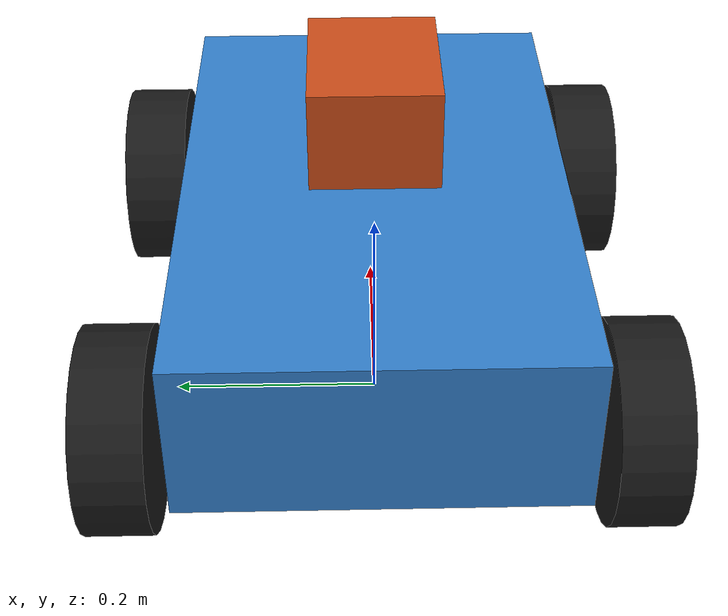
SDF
<?xml version="1.0"?>
<sdf version="1.6">
  <model name="erc_rover">

    <pose>0 0 0.18 0 0 0</pose>

    <!-- ============================
         CHASSIS
    ============================ -->
    <link name="base_link">
      <inertial>
        <mass>8.0</mass>
        <inertia>
          <ixx>0.2</ixx><ixy>0</ixy><ixz>0</ixz>
          <iyy>0.3</iyy><iyz>0</iyz>
          <izz>0.4</izz>
        </inertia>
      </inertial>

      <!-- Chassis collision -->
      <collision name="chassis_collision">
        <geometry><box><size>0.55 0.35 0.15</size></box></geometry>
        <surface>
          <friction><ode><mu>0.5</mu><mu2>0.5</mu2></ode></friction>
        </surface>
      </collision>

      <!-- Chassis visual -->
      <visual name="chassis_visual">
        <geometry><box><size>0.55 0.35 0.15</size></box></geometry>
        <material>
          <ambient>0.2 0.5 0.8 1</ambient>
          <diffuse>0.2 0.5 0.8 1</diffuse>
        </material>
      </visual>

      <!-- Top sensor box -->
      <visual name="sensor_box">
        <pose>0.05 0 0.12 0 0 0</pose>
        <geometry><box><size>0.15 0.12 0.10</size></box></geometry>
        <material>
          <ambient>0.8 0.3 0.1 1</ambient>
          <diffuse>0.8 0.3 0.1 1</diffuse>
        </material>
      </visual>

    </link>

    <!-- Dedicated Front Bumper Link with Contact Sensor -->
    <link name="front_bumper">
      <pose>0.28 0 -0.04 0 0 0</pose>
      <inertial>
        <mass>0.1</mass>
        <inertia>
          <ixx>0.001</ixx><ixy>0</ixy><ixz>0</ixz>
          <iyy>0.001</iyy><iyz>0</iyz>
          <izz>0.001</izz>
        </inertia>
      </inertial>
      <collision name="bumper_collision">
        <geometry><box><size>0.02 0.35 0.15</size></box></geometry>
      </collision>
      <visual name="bumper_visual">
        <geometry><box><size>0.02 0.35 0.15</size></box></geometry>
        <material>
          <ambient>0.8 0.1 0.1 1</ambient>
          <diffuse>0.8 0.1 0.1 1</diffuse>
        </material>
      </visual>

      <sensor name="bumper_sensor" type="contact">
        <contact>
          <collision>bumper_collision</collision>
        </contact>
        <plugin name="gazebo_ros_bumper" filename="libgazebo_ros_bumper.so">
          <ros>
            <namespace>/</namespace>
            <remapping>bumper_states:=bumper_states</remapping>
          </ros>
          <frame_name>front_bumper</frame_name>
        </plugin>
        <always_on>true</always_on>
        <update_rate>100</update_rate>
      </sensor>
    </link>

    <joint name="joint_bumper" type="fixed">
      <parent>base_link</parent>
      <child>front_bumper</child>
    </joint>

    <!-- ============================
         WHEELS (4x)
    ============================ -->

    <!-- Front Left Wheel -->
    <link name="wheel_fl">
      <pose>0.20 0.22 -0.05 -1.5707 0 0</pose>
      <inertial>
        <mass>0.5</mass>
        <inertia><ixx>0.003</ixx><ixy>0</ixy><ixz>0</ixz><iyy>0.003</iyy><iyz>0</iyz><izz>0.005</izz></inertia>
      </inertial>
      <collision name="collision">
        <geometry><cylinder><radius>0.09</radius><length>0.06</length></cylinder></geometry>
        <surface><friction><ode><mu>1.5</mu><mu2>1.5</mu2></ode></friction></surface>
      </collision>
      <visual name="visual">
        <geometry><cylinder><radius>0.09</radius><length>0.06</length></cylinder></geometry>
        <material><ambient>0.1 0.1 0.1 1</ambient></material>
      </visual>
    </link>
    <joint name="joint_fl" type="revolute">
      <parent>base_link</parent><child>wheel_fl</child>
      <axis><xyz>0 0 1</xyz><dynamics><friction>0.1</friction></dynamics></axis>
    </joint>

    <!-- Front Right Wheel -->
    <link name="wheel_fr">
      <pose>0.20 -0.22 -0.05 -1.5707 0 0</pose>
      <inertial>
        <mass>0.5</mass>
        <inertia><ixx>0.003</ixx><ixy>0</ixy><ixz>0</ixz><iyy>0.003</iyy><iyz>0</iyz><izz>0.005</izz></inertia>
      </inertial>
      <collision name="collision">
        <geometry><cylinder><radius>0.09</radius><length>0.06</length></cylinder></geometry>
        <surface><friction><ode><mu>1.5</mu><mu2>1.5</mu2></ode></friction></surface>
      </collision>
      <visual name="visual">
        <geometry><cylinder><radius>0.09</radius><length>0.06</length></cylinder></geometry>
        <material><ambient>0.1 0.1 0.1 1</ambient></material>
      </visual>
    </link>
    <joint name="joint_fr" type="revolute">
      <parent>base_link</parent><child>wheel_fr</child>
      <axis><xyz>0 0 1</xyz><dynamics><friction>0.1</friction></dynamics></axis>
    </joint>

    <!-- Rear Left Wheel -->
    <link name="wheel_rl">
      <pose>-0.20 0.22 -0.05 -1.5707 0 0</pose>
      <inertial>
        <mass>0.5</mass>
        <inertia><ixx>0.003</ixx><ixy>0</ixy><ixz>0</ixz><iyy>0.003</iyy><iyz>0</iyz><izz>0.005</izz></inertia>
      </inertial>
      <collision name="collision">
        <geometry><cylinder><radius>0.09</radius><length>0.06</length></cylinder></geometry>
        <surface><friction><ode><mu>1.5</mu><mu2>1.5</mu2></ode></friction></surface>
      </collision>
      <visual name="visual">
        <geometry><cylinder><radius>0.09</radius><length>0.06</length></cylinder></geometry>
        <material><ambient>0.1 0.1 0.1 1</ambient></material>
      </visual>
    </link>
    <joint name="joint_rl" type="revolute">
      <parent>base_link</parent><child>wheel_rl</child>
      <axis><xyz>0 0 1</xyz><dynamics><friction>0.1</friction></dynamics></axis>
    </joint>

    <!-- Rear Right Wheel -->
    <link name="wheel_rr">
      <pose>-0.20 -0.22 -0.05 -1.5707 0 0</pose>
      <inertial>
        <mass>0.5</mass>
        <inertia><ixx>0.003</ixx><ixy>0</ixy><ixz>0</ixz><iyy>0.003</iyy><iyz>0</iyz><izz>0.005</izz></inertia>
      </inertial>
      <collision name="collision">
        <geometry><cylinder><radius>0.09</radius><length>0.06</length></cylinder></geometry>
        <surface><friction><ode><mu>1.5</mu><mu2>1.5</mu2></ode></friction></surface>
      </collision>
      <visual name="visual">
        <geometry><cylinder><radius>0.09</radius><length>0.06</length></cylinder></geometry>
        <material><ambient>0.1 0.1 0.1 1</ambient></material>
      </visual>
    </link>
    <joint name="joint_rr" type="revolute">
      <parent>base_link</parent><child>wheel_rr</child>
      <axis><xyz>0 0 1</xyz><dynamics><friction>0.1</friction></dynamics></axis>
    </joint>

    <!-- ============================
         DIFFERENTIAL DRIVE PLUGIN
    ============================ -->
    <plugin name="differential_drive" filename="libgazebo_ros_diff_drive.so">
      <ros>
        <namespace>/</namespace>
        <remapping>cmd_vel:=cmd_vel</remapping>
        <remapping>odom:=odom</remapping>
      </ros>

      <num_wheel_pairs>2</num_wheel_pairs>

      <!-- Wheels -->
      <left_joint>joint_fl</left_joint>
      <left_joint>joint_rl</left_joint>
      <right_joint>joint_fr</right_joint>
      <right_joint>joint_rr</right_joint>

      <!-- Kinematics -->
      <wheel_separation>0.44</wheel_separation>
      <wheel_diameter>0.18</wheel_diameter>

      <!-- Limits -->
      <max_wheel_torque>100</max_wheel_torque>
      <max_wheel_acceleration>5.0</max_wheel_acceleration>

      <!-- Output -->
      <publish_odom>true</publish_odom>
      <publish_odom_tf>true</publish_odom_tf>
      <publish_wheel_tf>false</publish_wheel_tf>
      <odometry_frame>odom</odometry_frame>
      <robot_base_frame>base_link</robot_base_frame>
    </plugin>

  </model>
</sdf>
